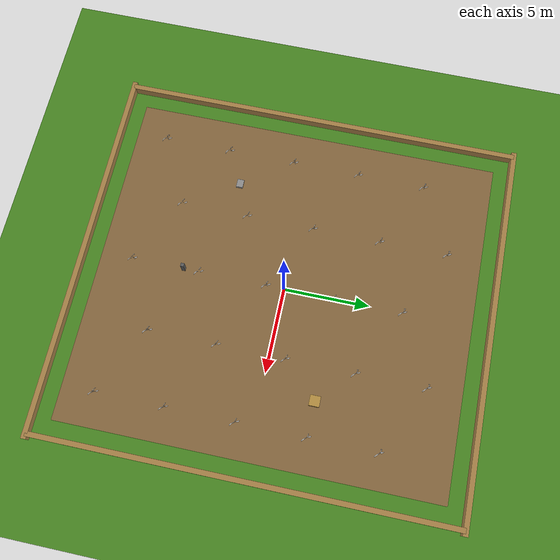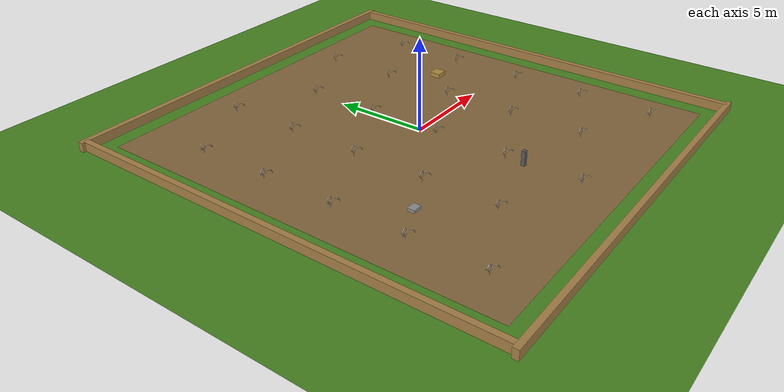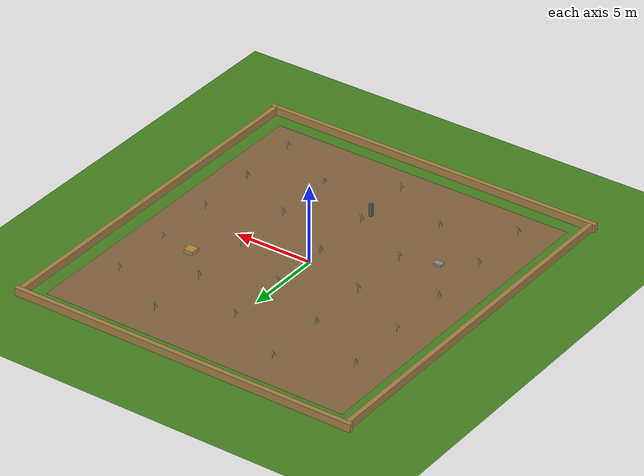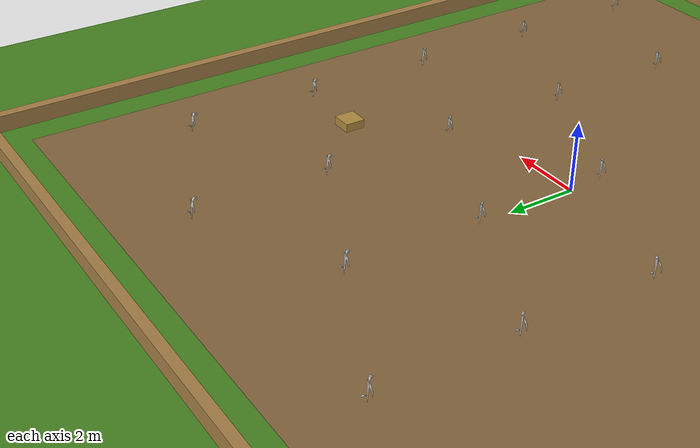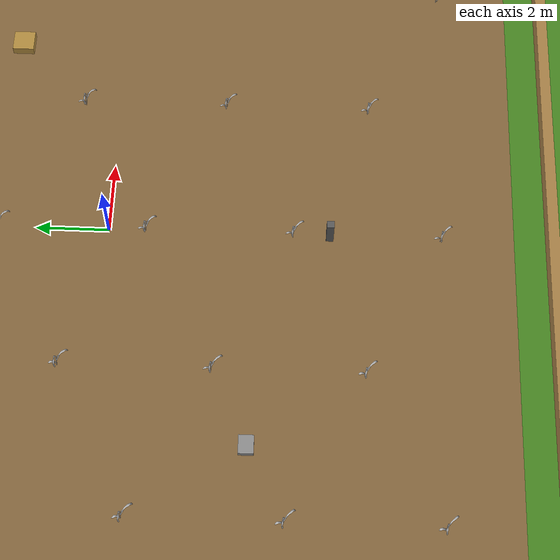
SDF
<sdf version="1.9">
 <world name="farm_world">
  <plugin filename="gz-sim-physics-system" name="gz::sim::systems::Physics"/>
  <plugin filename="gz-sim-user-commands-system" name="gz::sim::systems::UserCommands"/>
  <plugin filename="gz-sim-scene-broadcaster-system" name="gz::sim::systems::SceneBroadcaster"/>
  <plugin filename="gz-sim-contact-system" name="gz::sim::systems::Contact"/>
  <plugin filename="gz-sim-sensors-system" name="gz::sim::systems::Sensors">
   <render_engine>ogre2</render_engine>
  </plugin>
  <plugin filename="gz-sim-imu-system" name="gz::sim::systems::Imu"/>
  <physics name="1ms" type="ignored">
   <max_step_size>0.001</max_step_size>
   <real_time_factor>1.0</real_time_factor>
   <real_time_update_rate>1000</real_time_update_rate>
  </physics>
  <scene>
   <ambient>0.4 0.4 0.4 1</ambient>
   <background>0.53 0.81 0.98 1</background>
   <shadows>true</shadows>
   <grid>false</grid>
  </scene>
  <light type="directional" name="sun">
   <pose>0 0 100 0 0 0</pose>
   <diffuse>0.9 0.9 0.9 1</diffuse>
   <specular>0.1 0.1 0.1 1</specular>
   <direction>-0.5 0.1 -0.9</direction>
  </light>
  <model name="ground_grass">
   <static>true</static>
   <link name="link">
    <collision name="collision">
     <geometry><plane><normal>0 0 1</normal><size>40 40</size></plane></geometry>
     <surface><friction><ode><mu>1.0</mu><mu2>1.0</mu2></ode></friction></surface>
    </collision>
    <visual name="visual">
     <geometry><plane><normal>0 0 1</normal><size>40 40</size></plane></geometry>
     <material>
      <ambient>0.22 0.42 0.10 1</ambient>
      <diffuse>0.28 0.52 0.13 1</diffuse>
      <specular>0.02 0.04 0.01 1</specular>
     </material>
    </visual>
   </link>
  </model>
  <model name="ground_soil">
   <static>true</static>
   <link name="link">
    <visual name="visual">
     <pose>0 0 0.0005 0 0 0</pose>
     <geometry><box><size>20 22 0.001</size></box></geometry>
     <material>
      <ambient>0.42 0.31 0.18 1</ambient>
      <diffuse>0.52 0.40 0.24 1</diffuse>
      <specular>0.05 0.04 0.02 1</specular>
     </material>
    </visual>
   </link>
  </model>
  <model name="wall_north">
   <static>true</static>
   <pose>0 12 0.25 0 0 0</pose>
   <link name="link">
    <collision name="c"><geometry><box><size>22.6 0.3 0.5</size></box></geometry></collision>
    <visual name="v">
     <geometry><box><size>22.6 0.3 0.5</size></box></geometry>
     <material><ambient>0.55 0.40 0.22 1</ambient><diffuse>0.65 0.50 0.28 1</diffuse></material>
    </visual>
   </link>
  </model>
  <model name="wall_south">
   <static>true</static>
   <pose>0 -12 0.25 0 0 0</pose>
   <link name="link">
    <collision name="c"><geometry><box><size>22.6 0.3 0.5</size></box></geometry></collision>
    <visual name="v">
     <geometry><box><size>22.6 0.3 0.5</size></box></geometry>
     <material><ambient>0.55 0.40 0.22 1</ambient><diffuse>0.65 0.50 0.28 1</diffuse></material>
    </visual>
   </link>
  </model>
  <model name="wall_east">
   <static>true</static>
   <pose>11 0 0.25 0 0 0</pose>
   <link name="link">
    <collision name="c"><geometry><box><size>0.3 24 0.5</size></box></geometry></collision>
    <visual name="v">
     <geometry><box><size>0.3 24 0.5</size></box></geometry>
     <material><ambient>0.55 0.40 0.22 1</ambient><diffuse>0.65 0.50 0.28 1</diffuse></material>
    </visual>
   </link>
  </model>
  <model name="wall_west">
   <static>true</static>
   <pose>-11 0 0.25 0 0 0</pose>
   <link name="link">
    <collision name="c"><geometry><box><size>0.3 24 0.5</size></box></geometry></collision>
    <visual name="v">
     <geometry><box><size>0.3 24 0.5</size></box></geometry>
     <material><ambient>0.55 0.40 0.22 1</ambient><diffuse>0.65 0.50 0.28 1</diffuse></material>
    </visual>
   </link>
  </model>
  <model name="obstacle_rock">
   <static>true</static>
   <pose>-6 -4 0 0 0 0</pose>
   <link name="link">
    <collision name="c"><geometry><box><size>0.5 0.4 0.3</size></box></geometry></collision>
    <visual name="v">
     <geometry><box><size>0.5 0.4 0.3</size></box></geometry>
     <material><ambient>0.45 0.45 0.45 1</ambient><diffuse>0.55 0.55 0.55 1</diffuse></material>
    </visual>
   </link>
  </model>
  <model name="obstacle_crate">
   <static>true</static>
   <pose>6 3 0 0 0 0</pose>
   <link name="link">
    <collision name="c"><geometry><box><size>0.6 0.6 0.5</size></box></geometry></collision>
    <visual name="v">
     <geometry><box><size>0.6 0.6 0.5</size></box></geometry>
     <material><ambient>0.60 0.45 0.20 1</ambient><diffuse>0.70 0.55 0.25 1</diffuse></material>
    </visual>
   </link>
  </model>
  <model name="obstacle_post">
   <static>true</static>
   <pose>0 -6 0.4 0 0 0</pose>
   <link name="link">
    <collision name="c"><geometry><box><size>0.2 0.2 0.8</size></box></geometry></collision>
    <visual name="v">
     <geometry><box><size>0.2 0.2 0.8</size></box></geometry>
     <material><ambient>0.25 0.25 0.25 1</ambient><diffuse>0.35 0.35 0.35 1</diffuse></material>
    </visual>
   </link>
  </model>
  <include>
   <uri>model://maize_01</uri>
   <name>maize_r0_p0</name>
   <pose>-8 -9 0 0 0 0</pose>
   <static>true</static>
  </include>
  <include>
   <uri>model://maize_01</uri>
   <name>maize_r0_p2</name>
   <pose>-8 -5 0 0 0 0</pose>
   <static>true</static>
  </include>
  <include>
   <uri>model://maize_01</uri>
   <name>maize_r0_p4</name>
   <pose>-8 -1 0 0 0 0</pose>
   <static>true</static>
  </include>
  <include>
   <uri>model://maize_01</uri>
   <name>maize_r0_p6</name>
   <pose>-8  3 0 0 0 0</pose>
   <static>true</static>
  </include>
  <include>
   <uri>model://maize_01</uri>
   <name>maize_r0_p8</name>
   <pose>-8  7 0 0 0 0</pose>
   <static>true</static>
  </include>
  <include>
   <uri>model://maize_01</uri>
   <name>maize_r1_p1</name>
   <pose>-4 -7 0 0 0 0</pose>
   <static>true</static>
  </include>
  <include>
   <uri>model://maize_01</uri>
   <name>maize_r1_p3</name>
   <pose>-4 -3 0 0 0 0</pose>
   <static>true</static>
  </include>
  <include>
   <uri>model://maize_01</uri>
   <name>maize_r1_p5</name>
   <pose>-4  1 0 0 0 0</pose>
   <static>true</static>
  </include>
  <include>
   <uri>model://maize_01</uri>
   <name>maize_r1_p7</name>
   <pose>-4  5 0 0 0 0</pose>
   <static>true</static>
  </include>
  <include>
   <uri>model://maize_01</uri>
   <name>maize_r1_p9</name>
   <pose>-4  9 0 0 0 0</pose>
   <static>true</static>
  </include>
  <include>
   <uri>model://maize_01</uri>
   <name>maize_r2_p0</name>
   <pose>0 -9 0 0 0 0</pose>
   <static>true</static>
  </include>
  <include>
   <uri>model://maize_01</uri>
   <name>maize_r2_p2</name>
   <pose>0 -5 0 0 0 0</pose>
   <static>true</static>
  </include>
  <include>
   <uri>model://maize_01</uri>
   <name>maize_r2_p4</name>
   <pose>0 -1 0 0 0 0</pose>
   <static>true</static>
  </include>
  <include>
   <uri>model://maize_01</uri>
   <name>maize_r2_p6</name>
   <pose>0  3 0 0 0 0</pose>
   <static>true</static>
  </include>
  <include>
   <uri>model://maize_01</uri>
   <name>maize_r2_p8</name>
   <pose>0  7 0 0 0 0</pose>
   <static>true</static>
  </include>
  <include>
   <uri>model://maize_01</uri>
   <name>maize_r3_p1</name>
   <pose>4 -7 0 0 0 0</pose>
   <static>true</static>
  </include>
  <include>
   <uri>model://maize_01</uri>
   <name>maize_r3_p3</name>
   <pose>4 -3 0 0 0 0</pose>
   <static>true</static>
  </include>
  <include>
   <uri>model://maize_01</uri>
   <name>maize_r3_p5</name>
   <pose>4  1 0 0 0 0</pose>
   <static>true</static>
  </include>
  <include>
   <uri>model://maize_01</uri>
   <name>maize_r3_p7</name>
   <pose>4  5 0 0 0 0</pose>
   <static>true</static>
  </include>
  <include>
   <uri>model://maize_01</uri>
   <name>maize_r3_p9</name>
   <pose>4  9 0 0 0 0</pose>
   <static>true</static>
  </include>
  <include>
   <uri>model://maize_01</uri>
   <name>maize_r4_p0</name>
   <pose>8 -9 0 0 0 0</pose>
   <static>true</static>
  </include>
  <include>
   <uri>model://maize_01</uri>
   <name>maize_r4_p2</name>
   <pose>8 -5 0 0 0 0</pose>
   <static>true</static>
  </include>
  <include>
   <uri>model://maize_01</uri>
   <name>maize_r4_p4</name>
   <pose>8 -1 0 0 0 0</pose>
   <static>true</static>
  </include>
  <include>
   <uri>model://maize_01</uri>
   <name>maize_r4_p6</name>
   <pose>8  3 0 0 0 0</pose>
   <static>true</static>
  </include>
  <include>
   <uri>model://maize_01</uri>
   <name>maize_r4_p8</name>
   <pose>8  7 0 0 0 0</pose>
   <static>true</static>
  </include>
 </world>
</sdf>

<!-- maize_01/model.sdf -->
<sdf version="1.6">
  <model name='maize_01'>
    <pose frame=''>0 0 0.05 0 -0 0</pose>
    <link name='maize_01_link'>
      <inertial>
        <pose>0 0 0.01 0 0 0</pose>
        <mass>0.3</mass>
        <inertia>
          <ixx>0.0033416667</ixx>
          <ixy>0</ixy>
          <ixz>0</ixz>
          <iyy>0.0033416667</iyy>
          <iyz>0</iyz>
          <izz>0.000016666667</izz>
        </inertia>
        <pose>0 0 0.1 0 0 0</pose>
      </inertial>
      <collision name='collision'>
        <pose>0 0 0.2 0 -0 0</pose>
        <geometry>
          <box>
            <size>0.02 0.02 0.4</size>
          </box>
        </geometry>
        <max_contacts>10</max_contacts>
        <surface>
          <contact>
            <ode/>
          </contact>
          <bounce/>
          <friction>
            <ode>
              <mu>10</mu>
              <mu2>10</mu2>
            </ode>
          </friction>
        </surface>
      </collision>
      <visual name='visual'>
        <geometry>
          <mesh>
            <uri>model://maize_01/meshes/maize_01.dae</uri>
            <scale>0.683166466464586 0.683166466464586 0.683166466464586</scale>
          </mesh>
        </geometry>
      </visual>
      <self_collide>0</self_collide>
      <enable_wind>0</enable_wind>
      <kinematic>0</kinematic>
    </link>
  </model>
</sdf>
